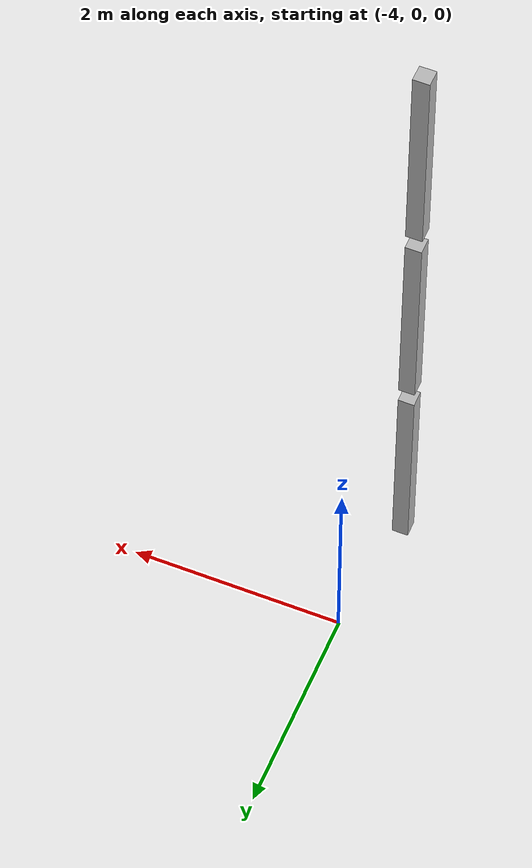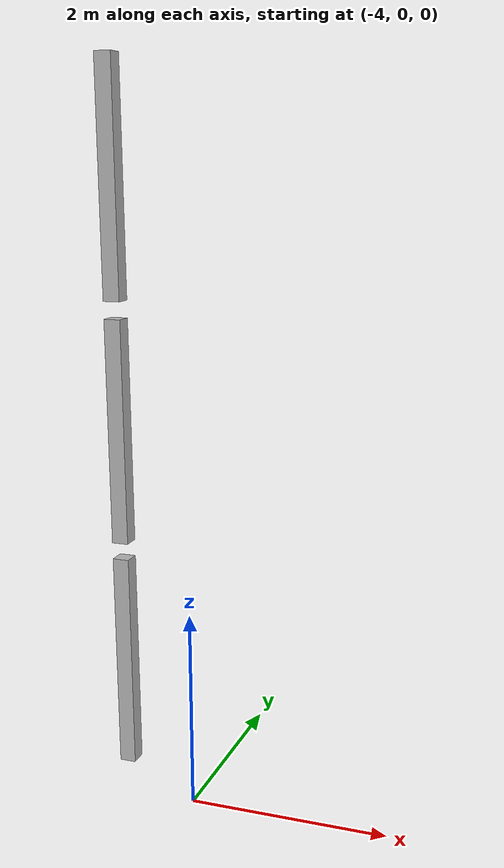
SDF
<sdf version="1.7">
 <world name="default">
  <model name="orthogonal_747_2.000.15_TS">
   <static>1</static>
   <link name="z_link_2_2_1">
    <inertial>
     <mass>1</mass>
     <inertia>
      <ixx>0.166667</ixx>
      <ixy>0</ixy>
      <ixz>0</ixz>
      <iyy>0.166667</iyy>
      <iyz>0</iyz>
      <izz>0.166667</izz>
     </inertia>
    </inertial>
    <pose>2.15 4.3 4.3 0 -0 0</pose>
    <visual name="visual_0">
     <laser_retro>2087</laser_retro>
     <geometry><box><size>0.15 1e-06 2</size></box></geometry>
     <material>
      <script><name>Gazebo/Grey</name><uri>file://media/materials/scripts/gazebo.material</uri></script>
      <shader type="pixel"><normal_map>__default__</normal_map></shader>
      <ambient>0.678 0.498 0.659 1</ambient>
      <diffuse>0.7 0.7 0.7 1</diffuse>
      <specular>0.01 0.01 0.01 1</specular>
      <emissive>0 0 0 1</emissive>
     </material>
     <pose>0 -0.075 0 0 -0 0</pose>
     <transparency>1</transparency>
    </visual>
    <visual name="visual_1">
     <laser_retro>2088</laser_retro>
     <geometry><box><size>0.15 1e-06 2</size></box></geometry>
     <material>
      <script><name>Gazebo/Grey</name><uri>file://media/materials/scripts/gazebo.material</uri></script>
      <shader type="pixel"><normal_map>__default__</normal_map></shader>
      <ambient>0.447 0.624 0.812 1</ambient>
      <diffuse>0.7 0.7 0.7 1</diffuse>
      <specular>0.01 0.01 0.01 1</specular>
      <emissive>0 0 0 1</emissive>
     </material>
     <pose>0 0.075 0 0 -0 0</pose>
     <transparency>1</transparency>
    </visual>
    <visual name="visual_2">
     <laser_retro>2089</laser_retro>
     <geometry><box><size>0.15 0.15 1e-06</size></box></geometry>
     <material>
      <script><name>Gazebo/Grey</name><uri>file://media/materials/scripts/gazebo.material</uri></script>
      <shader type="pixel"><normal_map>__default__</normal_map></shader>
      <ambient>0.988 0.686 0.243 1</ambient>
      <diffuse>0.7 0.7 0.7 1</diffuse>
      <specular>0.01 0.01 0.01 1</specular>
      <emissive>0 0 0 1</emissive>
     </material>
     <pose>0 0 -1 0 -0 0</pose>
     <transparency>1</transparency>
    </visual>
    <visual name="visual_3">
     <laser_retro>2090</laser_retro>
     <geometry><box><size>1e-06 0.15 2</size></box></geometry>
     <material>
      <script><name>Gazebo/Grey</name><uri>file://media/materials/scripts/gazebo.material</uri></script>
      <shader type="pixel"><normal_map>__default__</normal_map></shader>
      <ambient>0.988 0.914 0.31 1</ambient>
      <diffuse>0.7 0.7 0.7 1</diffuse>
      <specular>0.01 0.01 0.01 1</specular>
      <emissive>0 0 0 1</emissive>
     </material>
     <pose>0.075 0 0 0 -0 0</pose>
     <transparency>1</transparency>
    </visual>
    <visual name="visual_4">
     <laser_retro>2091</laser_retro>
     <geometry><box><size>0.15 0.15 1e-06</size></box></geometry>
     <material>
      <script><name>Gazebo/Grey</name><uri>file://media/materials/scripts/gazebo.material</uri></script>
      <shader type="pixel"><normal_map>__default__</normal_map></shader>
      <ambient>0.937 0.161 0.161 1</ambient>
      <diffuse>0.7 0.7 0.7 1</diffuse>
      <specular>0.01 0.01 0.01 1</specular>
      <emissive>0 0 0 1</emissive>
     </material>
     <pose>0 0 1 0 -0 0</pose>
     <transparency>1</transparency>
    </visual>
    <visual name="visual_5">
     <laser_retro>2092</laser_retro>
     <geometry><box><size>1e-06 0.15 2</size></box></geometry>
     <material>
      <script><name>Gazebo/Grey</name><uri>file://media/materials/scripts/gazebo.material</uri></script>
      <shader type="pixel"><normal_map>__default__</normal_map></shader>
      <ambient>0.541 0.886 0.204 1</ambient>
      <diffuse>0.7 0.7 0.7 1</diffuse>
      <specular>0.01 0.01 0.01 1</specular>
      <emissive>0 0 0 1</emissive>
     </material>
     <pose>-0.075 0 0 0 -0 0</pose>
     <transparency>1</transparency>
    </visual>
    <visual name="visual_texture">
     <geometry><box><size>0.149985 0.149985 1.9998</size></box></geometry>
     <material>
      <script>
       <uri>model://BASE_MODELS/simple_block_v2_textured/materials/scripts</uri>
       <uri>model://BASE_MODELS/simple_block_v2_textured/materials/textures</uri>
       <name>metal</name>
      </script>
     </material>
     <laser_retro>2093</laser_retro>
    </visual>
    <collision name="collision">
     <geometry><box><size>0.15 0.15 2</size></box></geometry>
     <surface>
      <friction>
       <ode><mu>1</mu><mu2>1</mu2><fdir1>0 0 0</fdir1><slip1>0</slip1><slip2>0</slip2></ode>
       <torsional>
        <coefficient>1</coefficient>
        <patch_radius>0</patch_radius>
        <surface_radius>0</surface_radius>
        <use_patch_radius>1</use_patch_radius>
        <ode><slip>0</slip></ode>
       </torsional>
      </friction>
      <bounce><restitution_coefficient>0</restitution_coefficient><threshold>1e+06</threshold></bounce>
      <contact>
       <collide_without_contact>0</collide_without_contact>
       <collide_without_contact_bitmask>1</collide_without_contact_bitmask>
       <collide_bitmask>1</collide_bitmask>
       <ode>
        <soft_cfm>0</soft_cfm>
        <soft_erp>0.2</soft_erp>
        <kp>1e+13</kp>
        <kd>1</kd>
        <max_vel>0.01</max_vel>
        <min_depth>0</min_depth>
       </ode>
       <bullet>
        <split_impulse>1</split_impulse>
        <split_impulse_penetration_threshold>-0.01</split_impulse_penetration_threshold>
        <soft_cfm>0</soft_cfm>
        <soft_erp>0.2</soft_erp>
        <kp>1e+13</kp>
        <kd>1</kd>
       </bullet>
      </contact>
     </surface>
    </collision>
   </link>
   <link name="z_link_3_2_1">
    <inertial>
     <mass>1</mass>
     <inertia>
      <ixx>0.166667</ixx>
      <ixy>0</ixy>
      <ixz>0</ixz>
      <iyy>0.166667</iyy>
      <iyz>0</iyz>
      <izz>0.166667</izz>
     </inertia>
    </inertial>
    <pose>2.15 4.3 6.45 0 -0 0</pose>
    <visual name="visual_0">
     <laser_retro>2990</laser_retro>
     <geometry><box><size>0.15 1e-06 2</size></box></geometry>
     <material>
      <script><name>Gazebo/Grey</name><uri>file://media/materials/scripts/gazebo.material</uri></script>
      <shader type="pixel"><normal_map>__default__</normal_map></shader>
      <ambient>0.678 0.498 0.659 1</ambient>
      <diffuse>0.7 0.7 0.7 1</diffuse>
      <specular>0.01 0.01 0.01 1</specular>
      <emissive>0 0 0 1</emissive>
     </material>
     <pose>0 -0.075 0 0 -0 0</pose>
     <transparency>1</transparency>
    </visual>
    <visual name="visual_1">
     <laser_retro>2991</laser_retro>
     <geometry><box><size>0.15 1e-06 2</size></box></geometry>
     <material>
      <script><name>Gazebo/Grey</name><uri>file://media/materials/scripts/gazebo.material</uri></script>
      <shader type="pixel"><normal_map>__default__</normal_map></shader>
      <ambient>0.447 0.624 0.812 1</ambient>
      <diffuse>0.7 0.7 0.7 1</diffuse>
      <specular>0.01 0.01 0.01 1</specular>
      <emissive>0 0 0 1</emissive>
     </material>
     <pose>0 0.075 0 0 -0 0</pose>
     <transparency>1</transparency>
    </visual>
    <visual name="visual_2">
     <laser_retro>2992</laser_retro>
     <geometry><box><size>0.15 0.15 1e-06</size></box></geometry>
     <material>
      <script><name>Gazebo/Grey</name><uri>file://media/materials/scripts/gazebo.material</uri></script>
      <shader type="pixel"><normal_map>__default__</normal_map></shader>
      <ambient>0.988 0.686 0.243 1</ambient>
      <diffuse>0.7 0.7 0.7 1</diffuse>
      <specular>0.01 0.01 0.01 1</specular>
      <emissive>0 0 0 1</emissive>
     </material>
     <pose>0 0 -1 0 -0 0</pose>
     <transparency>1</transparency>
    </visual>
    <visual name="visual_3">
     <laser_retro>2993</laser_retro>
     <geometry><box><size>1e-06 0.15 2</size></box></geometry>
     <material>
      <script><name>Gazebo/Grey</name><uri>file://media/materials/scripts/gazebo.material</uri></script>
      <shader type="pixel"><normal_map>__default__</normal_map></shader>
      <ambient>0.988 0.914 0.31 1</ambient>
      <diffuse>0.7 0.7 0.7 1</diffuse>
      <specular>0.01 0.01 0.01 1</specular>
      <emissive>0 0 0 1</emissive>
     </material>
     <pose>0.075 0 0 0 -0 0</pose>
     <transparency>1</transparency>
    </visual>
    <visual name="visual_4">
     <laser_retro>2994</laser_retro>
     <geometry><box><size>0.15 0.15 1e-06</size></box></geometry>
     <material>
      <script><name>Gazebo/Grey</name><uri>file://media/materials/scripts/gazebo.material</uri></script>
      <shader type="pixel"><normal_map>__default__</normal_map></shader>
      <ambient>0.937 0.161 0.161 1</ambient>
      <diffuse>0.7 0.7 0.7 1</diffuse>
      <specular>0.01 0.01 0.01 1</specular>
      <emissive>0 0 0 1</emissive>
     </material>
     <pose>0 0 1 0 -0 0</pose>
     <transparency>1</transparency>
    </visual>
    <visual name="visual_5">
     <laser_retro>2995</laser_retro>
     <geometry><box><size>1e-06 0.15 2</size></box></geometry>
     <material>
      <script><name>Gazebo/Grey</name><uri>file://media/materials/scripts/gazebo.material</uri></script>
      <shader type="pixel"><normal_map>__default__</normal_map></shader>
      <ambient>0.541 0.886 0.204 1</ambient>
      <diffuse>0.7 0.7 0.7 1</diffuse>
      <specular>0.01 0.01 0.01 1</specular>
      <emissive>0 0 0 1</emissive>
     </material>
     <pose>-0.075 0 0 0 -0 0</pose>
     <transparency>1</transparency>
    </visual>
    <visual name="visual_texture">
     <geometry><box><size>0.149985 0.149985 1.9998</size></box></geometry>
     <material>
      <script>
       <uri>model://BASE_MODELS/simple_block_v2_textured/materials/scripts</uri>
       <uri>model://BASE_MODELS/simple_block_v2_textured/materials/textures</uri>
       <name>metal</name>
      </script>
     </material>
     <laser_retro>2996</laser_retro>
    </visual>
    <collision name="collision">
     <geometry><box><size>0.15 0.15 2</size></box></geometry>
     <surface>
      <friction>
       <ode><mu>1</mu><mu2>1</mu2><fdir1>0 0 0</fdir1><slip1>0</slip1><slip2>0</slip2></ode>
       <torsional>
        <coefficient>1</coefficient>
        <patch_radius>0</patch_radius>
        <surface_radius>0</surface_radius>
        <use_patch_radius>1</use_patch_radius>
        <ode><slip>0</slip></ode>
       </torsional>
      </friction>
      <bounce><restitution_coefficient>0</restitution_coefficient><threshold>1e+06</threshold></bounce>
      <contact>
       <collide_without_contact>0</collide_without_contact>
       <collide_without_contact_bitmask>1</collide_without_contact_bitmask>
       <collide_bitmask>1</collide_bitmask>
       <ode>
        <soft_cfm>0</soft_cfm>
        <soft_erp>0.2</soft_erp>
        <kp>1e+13</kp>
        <kd>1</kd>
        <max_vel>0.01</max_vel>
        <min_depth>0</min_depth>
       </ode>
       <bullet>
        <split_impulse>1</split_impulse>
        <split_impulse_penetration_threshold>-0.01</split_impulse_penetration_threshold>
        <soft_cfm>0</soft_cfm>
        <soft_erp>0.2</soft_erp>
        <kp>1e+13</kp>
        <kd>1</kd>
       </bullet>
      </contact>
     </surface>
    </collision>
   </link>
   <link name="z_link_4_2_1">
    <inertial>
     <mass>1</mass>
     <inertia>
      <ixx>0.166667</ixx>
      <ixy>0</ixy>
      <ixz>0</ixz>
      <iyy>0.166667</iyy>
      <iyz>0</iyz>
      <izz>0.166667</izz>
     </inertia>
    </inertial>
    <pose>2.15 4.3 8.6 0 -0 0</pose>
    <visual name="visual_0">
     <laser_retro>3893</laser_retro>
     <geometry><box><size>0.15 1e-06 2</size></box></geometry>
     <material>
      <script><name>Gazebo/Grey</name><uri>file://media/materials/scripts/gazebo.material</uri></script>
      <shader type="pixel"><normal_map>__default__</normal_map></shader>
      <ambient>0.678 0.498 0.659 1</ambient>
      <diffuse>0.7 0.7 0.7 1</diffuse>
      <specular>0.01 0.01 0.01 1</specular>
      <emissive>0 0 0 1</emissive>
     </material>
     <pose>0 -0.075 0 0 -0 0</pose>
     <transparency>1</transparency>
    </visual>
    <visual name="visual_1">
     <laser_retro>3894</laser_retro>
     <geometry><box><size>0.15 1e-06 2</size></box></geometry>
     <material>
      <script><name>Gazebo/Grey</name><uri>file://media/materials/scripts/gazebo.material</uri></script>
      <shader type="pixel"><normal_map>__default__</normal_map></shader>
      <ambient>0.447 0.624 0.812 1</ambient>
      <diffuse>0.7 0.7 0.7 1</diffuse>
      <specular>0.01 0.01 0.01 1</specular>
      <emissive>0 0 0 1</emissive>
     </material>
     <pose>0 0.075 0 0 -0 0</pose>
     <transparency>1</transparency>
    </visual>
    <visual name="visual_2">
     <laser_retro>3895</laser_retro>
     <geometry><box><size>0.15 0.15 1e-06</size></box></geometry>
     <material>
      <script><name>Gazebo/Grey</name><uri>file://media/materials/scripts/gazebo.material</uri></script>
      <shader type="pixel"><normal_map>__default__</normal_map></shader>
      <ambient>0.988 0.686 0.243 1</ambient>
      <diffuse>0.7 0.7 0.7 1</diffuse>
      <specular>0.01 0.01 0.01 1</specular>
      <emissive>0 0 0 1</emissive>
     </material>
     <pose>0 0 -1 0 -0 0</pose>
     <transparency>1</transparency>
    </visual>
    <visual name="visual_3">
     <laser_retro>3896</laser_retro>
     <geometry><box><size>1e-06 0.15 2</size></box></geometry>
     <material>
      <script><name>Gazebo/Grey</name><uri>file://media/materials/scripts/gazebo.material</uri></script>
      <shader type="pixel"><normal_map>__default__</normal_map></shader>
      <ambient>0.988 0.914 0.31 1</ambient>
      <diffuse>0.7 0.7 0.7 1</diffuse>
      <specular>0.01 0.01 0.01 1</specular>
      <emissive>0 0 0 1</emissive>
     </material>
     <pose>0.075 0 0 0 -0 0</pose>
     <transparency>1</transparency>
    </visual>
    <visual name="visual_4">
     <laser_retro>3897</laser_retro>
     <geometry><box><size>0.15 0.15 1e-06</size></box></geometry>
     <material>
      <script><name>Gazebo/Grey</name><uri>file://media/materials/scripts/gazebo.material</uri></script>
      <shader type="pixel"><normal_map>__default__</normal_map></shader>
      <ambient>0.937 0.161 0.161 1</ambient>
      <diffuse>0.7 0.7 0.7 1</diffuse>
      <specular>0.01 0.01 0.01 1</specular>
      <emissive>0 0 0 1</emissive>
     </material>
     <pose>0 0 1 0 -0 0</pose>
     <transparency>1</transparency>
    </visual>
    <visual name="visual_5">
     <laser_retro>3898</laser_retro>
     <geometry><box><size>1e-06 0.15 2</size></box></geometry>
     <material>
      <script><name>Gazebo/Grey</name><uri>file://media/materials/scripts/gazebo.material</uri></script>
      <shader type="pixel"><normal_map>__default__</normal_map></shader>
      <ambient>0.541 0.886 0.204 1</ambient>
      <diffuse>0.7 0.7 0.7 1</diffuse>
      <specular>0.01 0.01 0.01 1</specular>
      <emissive>0 0 0 1</emissive>
     </material>
     <pose>-0.075 0 0 0 -0 0</pose>
     <transparency>1</transparency>
    </visual>
    <visual name="visual_texture">
     <geometry><box><size>0.149985 0.149985 1.9998</size></box></geometry>
     <material>
      <script>
       <uri>model://BASE_MODELS/simple_block_v2_textured/materials/scripts</uri>
       <uri>model://BASE_MODELS/simple_block_v2_textured/materials/textures</uri>
       <name>metal</name>
      </script>
     </material>
     <laser_retro>3899</laser_retro>
    </visual>
    <collision name="collision">
     <geometry><box><size>0.15 0.15 2</size></box></geometry>
     <surface>
      <friction>
       <ode><mu>1</mu><mu2>1</mu2><fdir1>0 0 0</fdir1><slip1>0</slip1><slip2>0</slip2></ode>
       <torsional>
        <coefficient>1</coefficient>
        <patch_radius>0</patch_radius>
        <surface_radius>0</surface_radius>
        <use_patch_radius>1</use_patch_radius>
        <ode><slip>0</slip></ode>
       </torsional>
      </friction>
      <bounce><restitution_coefficient>0</restitution_coefficient><threshold>1e+06</threshold></bounce>
      <contact>
       <collide_without_contact>0</collide_without_contact>
       <collide_without_contact_bitmask>1</collide_without_contact_bitmask>
       <collide_bitmask>1</collide_bitmask>
       <ode>
        <soft_cfm>0</soft_cfm>
        <soft_erp>0.2</soft_erp>
        <kp>1e+13</kp>
        <kd>1</kd>
        <max_vel>0.01</max_vel>
        <min_depth>0</min_depth>
       </ode>
       <bullet>
        <split_impulse>1</split_impulse>
        <split_impulse_penetration_threshold>-0.01</split_impulse_penetration_threshold>
        <soft_cfm>0</soft_cfm>
        <soft_erp>0.2</soft_erp>
        <kp>1e+13</kp>
        <kd>1</kd>
       </bullet>
      </contact>
     </surface>
    </collision>
   </link>
   <pose>-6.47624 -5 -2.5 0 -0 0</pose>
  </model>
 </world>
</sdf>
